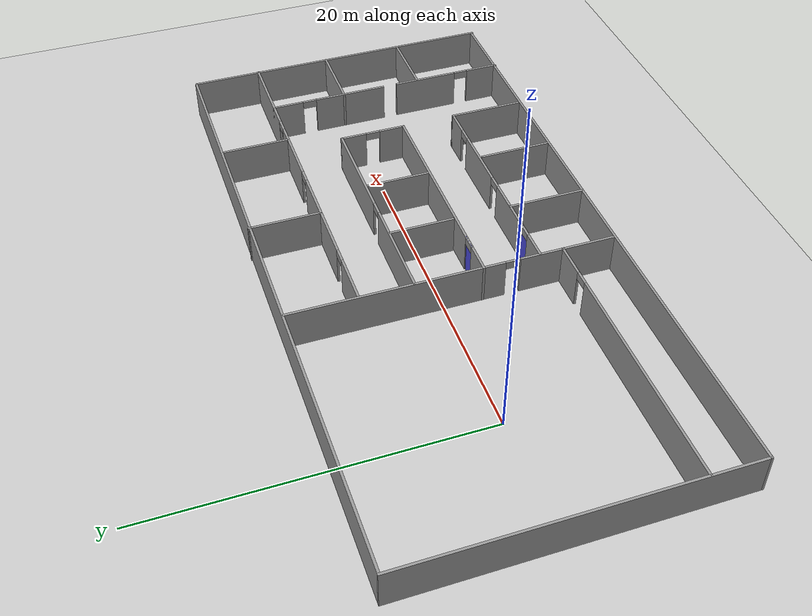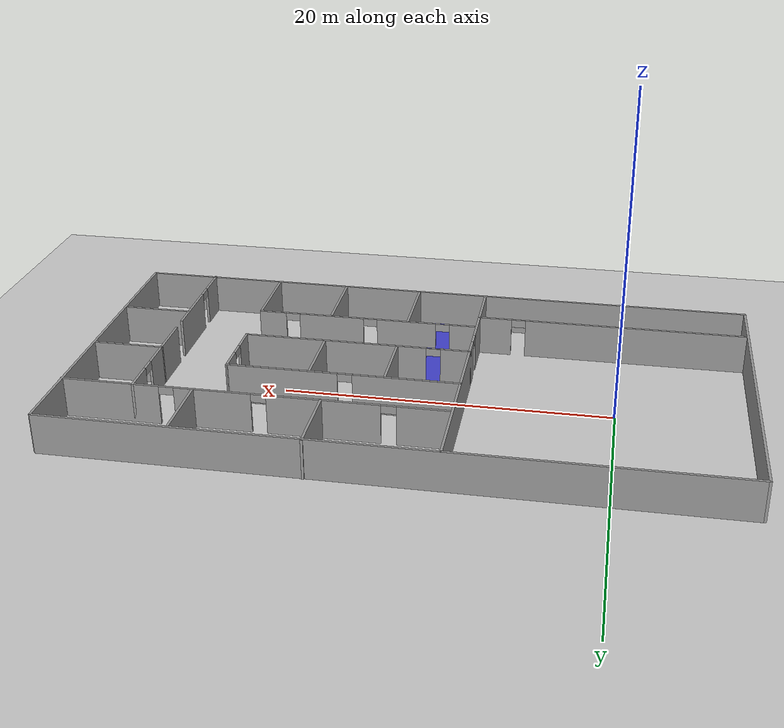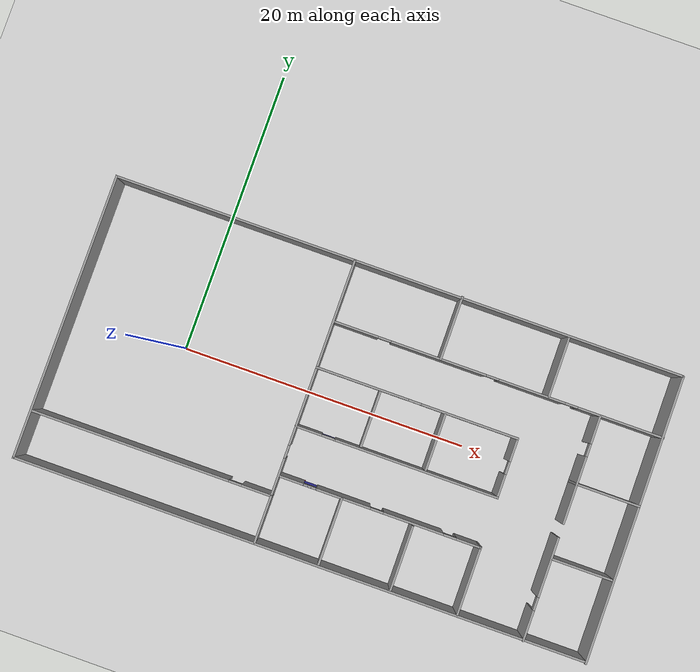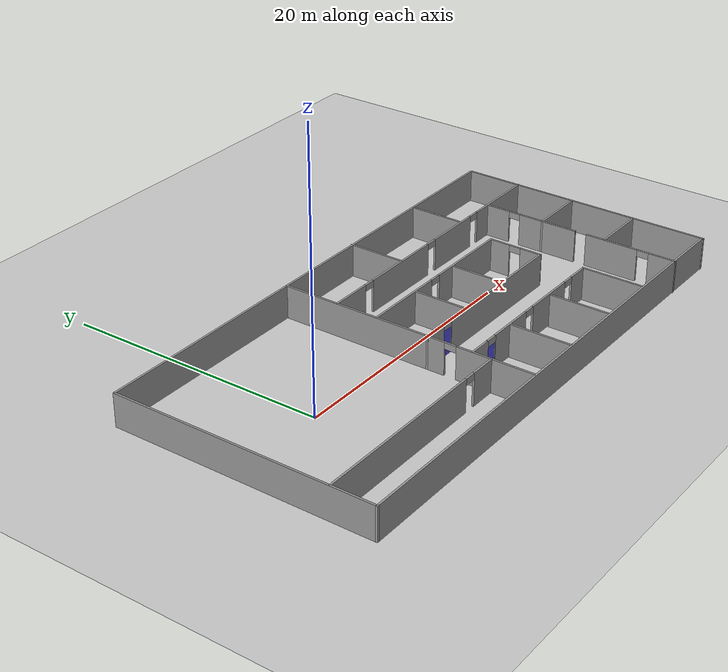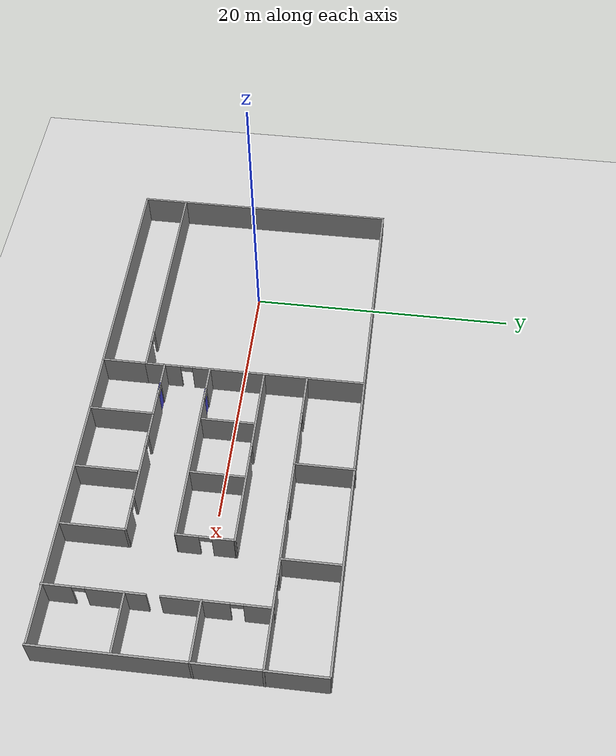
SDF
<sdf version="1.7">
 <world name="default">
  <model name="ground_plane">
   <static>1</static>
   <link name="link">
    <collision name="collision">
     <geometry><plane><normal>0 0 1</normal><size>100 100</size></plane></geometry>
     <surface><friction><ode><mu>100</mu><mu2>50</mu2></ode></friction></surface>
    </collision>
    <visual name="visual">
     <cast_shadows>0</cast_shadows>
     <geometry><plane><normal>0 0 1</normal><size>100 100</size></plane></geometry>
     <material>
      <script><uri>file://media/materials/scripts/gazebo.material</uri><name>Gazebo/Grey</name></script>
     </material>
    </visual>
   </link>
  </model>
  <model name="new_surveillance_world">
   <pose>12.0889 -0.60412 0 0 -0 0</pose>
   <link name="Wall_0">
    <collision name="Wall_0_Collision">
     <geometry><box><size>40 0.15 2.5</size></box></geometry>
     <pose>0 0 1.25 0 -0 0</pose>
    </collision>
    <visual name="Wall_0_Visual">
     <pose>0 0 1.25 0 -0 0</pose>
     <geometry><box><size>40 0.15 2.5</size></box></geometry>
     <material>
      <script><uri>file://media/materials/scripts/gazebo.material</uri><name>Gazebo/Grey</name></script>
      <ambient>1 1 1 1</ambient>
     </material>
     <meta><layer>0</layer></meta>
    </visual>
    <pose>-0.094918 -9.92648 0 0 -0 0</pose>
   </link>
   <link name="Wall_25">
    <collision name="Wall_25_Collision">
     <geometry><box><size>20 0.15 2.5</size></box></geometry>
     <pose>0 0 1.25 0 -0 0</pose>
    </collision>
    <visual name="Wall_25_Visual">
     <pose>0 0 1.25 0 -0 0</pose>
     <geometry><box><size>20 0.15 2.5</size></box></geometry>
     <material>
      <script><uri>file://media/materials/scripts/gazebo.material</uri><name>Gazebo/Grey</name></script>
      <ambient>1 1 1 1</ambient>
     </material>
     <meta><layer>0</layer></meta>
    </visual>
    <pose>19.9894 -0.065064 0 0 -0 1.5708</pose>
   </link>
   <link name="Wall_27">
    <pose>-11.5401 -6.63194 0 0 -0 0</pose>
    <visual name="Wall_27_Visual_0">
     <pose>-1.53194 0 1.25 0 -0 0</pose>
     <geometry><box><size>13.9361 0.15 2.5</size></box></geometry>
     <material>
      <script><uri>file://media/materials/scripts/gazebo.material</uri><name>Gazebo/Grey</name></script>
      <ambient>1 1 1 1</ambient>
     </material>
     <meta><layer>0</layer></meta>
    </visual>
    <collision name="Wall_27_Collision_0">
     <geometry><box><size>13.9361 0.15 2.5</size></box></geometry>
     <pose>-1.53194 0 1.25 0 -0 0</pose>
    </collision>
    <visual name="Wall_27_Visual_1">
     <pose>7.41806 0 1.25 0 -0 0</pose>
     <geometry><box><size>2.16387 0.15 2.5</size></box></geometry>
     <material>
      <script><uri>file://media/materials/scripts/gazebo.material</uri><name>Gazebo/Grey</name></script>
      <ambient>1 1 1 1</ambient>
     </material>
     <meta><layer>0</layer></meta>
    </visual>
    <collision name="Wall_27_Collision_1">
     <geometry><box><size>2.16387 0.15 2.5</size></box></geometry>
     <pose>7.41806 0 1.25 0 -0 0</pose>
    </collision>
    <visual name="Wall_27_Visual_2">
     <pose>5.88613 0 2.25 0 -0 0</pose>
     <geometry><box><size>0.9 0.15 0.5</size></box></geometry>
     <material>
      <script><uri>file://media/materials/scripts/gazebo.material</uri><name>Gazebo/Grey</name></script>
      <ambient>1 1 1 1</ambient>
     </material>
     <meta><layer>0</layer></meta>
    </visual>
    <collision name="Wall_27_Collision_2">
     <geometry><box><size>0.9 0.15 0.5</size></box></geometry>
     <pose>5.88613 0 2.25 0 -0 0</pose>
    </collision>
   </link>
   <link name="Wall_28">
    <pose>-3.1151 1.61459 0 0 -0 1.5708</pose>
    <visual name="Wall_28_Visual_0">
     <pose>-6.96456 0 1.25 0 -0 0</pose>
     <geometry><box><size>2.71394 0.15 2.5</size></box></geometry>
     <material>
      <script><uri>file://media/materials/scripts/gazebo.material</uri><name>Gazebo/Grey</name></script>
      <ambient>1 1 1 1</ambient>
     </material>
     <meta><layer>0</layer></meta>
    </visual>
    <collision name="Wall_28_Collision_0">
     <geometry><box><size>2.71394 0.15 2.5</size></box></geometry>
     <pose>-6.96456 0 1.25 0 -0 0</pose>
    </collision>
    <visual name="Wall_28_Visual_1">
     <pose>1.80697 0 1.25 0 -0 0</pose>
     <geometry><box><size>13.0291 0.15 2.5</size></box></geometry>
     <material>
      <script><uri>file://media/materials/scripts/gazebo.material</uri><name>Gazebo/Grey</name></script>
      <ambient>1 1 1 1</ambient>
     </material>
     <meta><layer>0</layer></meta>
    </visual>
    <collision name="Wall_28_Collision_1">
     <geometry><box><size>13.0291 0.15 2.5</size></box></geometry>
     <pose>1.80697 0 1.25 0 -0 0</pose>
    </collision>
    <visual name="Wall_28_Visual_2">
     <pose>-5.15759 0 2.25 0 -0 0</pose>
     <geometry><box><size>0.9 0.15 0.5</size></box></geometry>
     <material>
      <script><uri>file://media/materials/scripts/gazebo.material</uri><name>Gazebo/Grey</name></script>
      <ambient>1 1 1 1</ambient>
     </material>
     <meta><layer>0</layer></meta>
    </visual>
    <collision name="Wall_28_Collision_2">
     <geometry><box><size>0.9 0.15 0.5</size></box></geometry>
     <pose>-5.15759 0 2.25 0 -0 0</pose>
    </collision>
   </link>
   <link name="Wall_30">
    <collision name="Wall_30_Collision">
     <geometry><box><size>3.35736 0.15 2.5</size></box></geometry>
     <pose>0 0 1.25 0 -0 0</pose>
    </collision>
    <visual name="Wall_30_Visual">
     <pose>0 0 1.25 0 -0 0</pose>
     <geometry><box><size>3.35736 0.15 2.5</size></box></geometry>
     <material>
      <script><uri>file://media/materials/scripts/gazebo.material</uri><name>Gazebo/Grey</name></script>
      <ambient>1 1 1 1</ambient>
     </material>
     <meta><layer>0</layer></meta>
    </visual>
    <pose>-3.1151 -8.23541 0 0 -0 -1.5708</pose>
   </link>
   <link name="Wall_32">
    <pose>8.46992 5.62416 0 0 -0 0</pose>
    <visual name="Wall_32_Visual_0">
     <pose>-10.0174 0 1.25 0 -0 0</pose>
     <geometry><box><size>3.21511 0.15 2.5</size></box></geometry>
     <material>
      <script><uri>file://media/materials/scripts/gazebo.material</uri><name>Gazebo/Grey</name></script>
      <ambient>1 1 1 1</ambient>
     </material>
     <meta><layer>0</layer></meta>
    </visual>
    <collision name="Wall_32_Collision_0">
     <geometry><box><size>3.21511 0.15 2.5</size></box></geometry>
     <pose>-10.0174 0 1.25 0 -0 0</pose>
    </collision>
    <visual name="Wall_32_Visual_1">
     <pose>-4.16489 0 1.25 0 -0 0</pose>
     <geometry><box><size>6.69 0.15 2.5</size></box></geometry>
     <material>
      <script><uri>file://media/materials/scripts/gazebo.material</uri><name>Gazebo/Grey</name></script>
      <ambient>1 1 1 1</ambient>
     </material>
     <meta><layer>0</layer></meta>
    </visual>
    <collision name="Wall_32_Collision_1">
     <geometry><box><size>6.69 0.15 2.5</size></box></geometry>
     <pose>-4.16489 0 1.25 0 -0 0</pose>
    </collision>
    <visual name="Wall_32_Visual_2">
     <pose>2.39011 0 1.25 0 -0 0</pose>
     <geometry><box><size>4.62 0.15 2.5</size></box></geometry>
     <material>
      <script><uri>file://media/materials/scripts/gazebo.material</uri><name>Gazebo/Grey</name></script>
      <ambient>1 1 1 1</ambient>
     </material>
     <meta><layer>0</layer></meta>
    </visual>
    <collision name="Wall_32_Collision_2">
     <geometry><box><size>4.62 0.15 2.5</size></box></geometry>
     <pose>2.39011 0 1.25 0 -0 0</pose>
    </collision>
    <visual name="Wall_32_Visual_3">
     <pose>8.61256 0 1.25 0 -0 0</pose>
     <geometry><box><size>6.02489 0.15 2.5</size></box></geometry>
     <material>
      <script><uri>file://media/materials/scripts/gazebo.material</uri><name>Gazebo/Grey</name></script>
      <ambient>1 1 1 1</ambient>
     </material>
     <meta><layer>0</layer></meta>
    </visual>
    <collision name="Wall_32_Collision_3">
     <geometry><box><size>6.02489 0.15 2.5</size></box></geometry>
     <pose>8.61256 0 1.25 0 -0 0</pose>
    </collision>
    <visual name="Wall_32_Visual_4">
     <pose>-7.95989 0 2.25 0 -0 0</pose>
     <geometry><box><size>0.9 0.15 0.5</size></box></geometry>
     <material>
      <script><uri>file://media/materials/scripts/gazebo.material</uri><name>Gazebo/Grey</name></script>
      <ambient>1 1 1 1</ambient>
     </material>
     <meta><layer>0</layer></meta>
    </visual>
    <collision name="Wall_32_Collision_4">
     <geometry><box><size>0.9 0.15 0.5</size></box></geometry>
     <pose>-7.95989 0 2.25 0 -0 0</pose>
    </collision>
    <visual name="Wall_32_Visual_5">
     <pose>-0.369888 0 2.25 0 -0 0</pose>
     <geometry><box><size>0.9 0.15 0.5</size></box></geometry>
     <material>
      <script><uri>file://media/materials/scripts/gazebo.material</uri><name>Gazebo/Grey</name></script>
      <ambient>1 1 1 1</ambient>
     </material>
     <meta><layer>0</layer></meta>
    </visual>
    <collision name="Wall_32_Collision_5">
     <geometry><box><size>0.9 0.15 0.5</size></box></geometry>
     <pose>-0.369888 0 2.25 0 -0 0</pose>
    </collision>
    <visual name="Wall_32_Visual_6">
     <pose>5.15011 0 2.25 0 -0 0</pose>
     <geometry><box><size>0.9 0.15 0.5</size></box></geometry>
     <material>
      <script><uri>file://media/materials/scripts/gazebo.material</uri><name>Gazebo/Grey</name></script>
      <ambient>1 1 1 1</ambient>
     </material>
     <meta><layer>0</layer></meta>
    </visual>
    <collision name="Wall_32_Collision_6">
     <geometry><box><size>0.9 0.15 0.5</size></box></geometry>
     <pose>5.15011 0 2.25 0 -0 0</pose>
    </collision>
   </link>
   <link name="Wall_34">
    <pose>15.646 -2.17584 0 0 -0 -1.5708</pose>
    <visual name="Wall_34_Visual_0">
     <pose>-6.85992 0 1.25 0 -0 0</pose>
     <geometry><box><size>2.03016 0.15 2.5</size></box></geometry>
     <material>
      <script><uri>file://media/materials/scripts/gazebo.material</uri><name>Gazebo/Grey</name></script>
      <ambient>1 1 1 1</ambient>
     </material>
     <meta><layer>0</layer></meta>
    </visual>
    <collision name="Wall_34_Collision_0">
     <geometry><box><size>2.03016 0.15 2.5</size></box></geometry>
     <pose>-6.85992 0 1.25 0 -0 0</pose>
    </collision>
    <visual name="Wall_34_Visual_1">
     <pose>-2.58884 0 1.25 0 -0 0</pose>
     <geometry><box><size>4.712 0.15 2.5</size></box></geometry>
     <material>
      <script><uri>file://media/materials/scripts/gazebo.material</uri><name>Gazebo/Grey</name></script>
      <ambient>1 1 1 1</ambient>
     </material>
     <meta><layer>0</layer></meta>
    </visual>
    <collision name="Wall_34_Collision_1">
     <geometry><box><size>4.712 0.15 2.5</size></box></geometry>
     <pose>-2.58884 0 1.25 0 -0 0</pose>
    </collision>
    <visual name="Wall_34_Visual_2">
     <pose>2.74716 0 1.25 0 -0 0</pose>
     <geometry><box><size>4.16 0.15 2.5</size></box></geometry>
     <material>
      <script><uri>file://media/materials/scripts/gazebo.material</uri><name>Gazebo/Grey</name></script>
      <ambient>1 1 1 1</ambient>
     </material>
     <meta><layer>0</layer></meta>
    </visual>
    <collision name="Wall_34_Collision_2">
     <geometry><box><size>4.16 0.15 2.5</size></box></geometry>
     <pose>2.74716 0 1.25 0 -0 0</pose>
    </collision>
    <visual name="Wall_34_Visual_3">
     <pose>6.80108 0 1.25 0 -0 0</pose>
     <geometry><box><size>2.14784 0.15 2.5</size></box></geometry>
     <material>
      <script><uri>file://media/materials/scripts/gazebo.material</uri><name>Gazebo/Grey</name></script>
      <ambient>1 1 1 1</ambient>
     </material>
     <meta><layer>0</layer></meta>
    </visual>
    <collision name="Wall_34_Collision_3">
     <geometry><box><size>2.14784 0.15 2.5</size></box></geometry>
     <pose>6.80108 0 1.25 0 -0 0</pose>
    </collision>
    <visual name="Wall_34_Visual_4">
     <pose>-5.39484 0 2.25 0 -0 0</pose>
     <geometry><box><size>0.9 0.15 0.5</size></box></geometry>
     <material>
      <script><uri>file://media/materials/scripts/gazebo.material</uri><name>Gazebo/Grey</name></script>
      <ambient>1 1 1 1</ambient>
     </material>
     <meta><layer>0</layer></meta>
    </visual>
    <collision name="Wall_34_Collision_4">
     <geometry><box><size>0.9 0.15 0.5</size></box></geometry>
     <pose>-5.39484 0 2.25 0 -0 0</pose>
    </collision>
    <visual name="Wall_34_Visual_5">
     <pose>-0.23284 0 2.25 0 -0 0</pose>
     <geometry><box><size>0 0.15 0.5</size></box></geometry>
     <material>
      <script><uri>file://media/materials/scripts/gazebo.material</uri><name>Gazebo/Grey</name></script>
      <ambient>1 1 1 1</ambient>
     </material>
     <meta><layer>0</layer></meta>
    </visual>
    <collision name="Wall_34_Collision_5">
     <geometry><box><size>0 0.15 0.5</size></box></geometry>
     <pose>-0.23284 0 2.25 0 -0 0</pose>
    </collision>
    <visual name="Wall_34_Visual_6">
     <pose>5.27716 0 2.25 0 -0 0</pose>
     <geometry><box><size>0.9 0.15 0.5</size></box></geometry>
     <material>
      <script><uri>file://media/materials/scripts/gazebo.material</uri><name>Gazebo/Grey</name></script>
      <ambient>1 1 1 1</ambient>
     </material>
     <meta><layer>0</layer></meta>
    </visual>
    <collision name="Wall_34_Collision_6">
     <geometry><box><size>0.9 0.15 0.5</size></box></geometry>
     <pose>5.27716 0 2.25 0 -0 0</pose>
    </collision>
   </link>
   <link name="Wall_36">
    <pose>3.93738 2.36994 0 0 -0 0</pose>
    <visual name="Wall_36_Visual_0">
     <pose>-3.86818 0 1.25 0 -0 0</pose>
     <geometry><box><size>6.51365 0.15 2.5</size></box></geometry>
     <material>
      <script><uri>file://media/materials/scripts/gazebo.material</uri><name>Gazebo/Grey</name></script>
      <ambient>1 1 1 1</ambient>
     </material>
     <meta><layer>0</layer></meta>
    </visual>
    <collision name="Wall_36_Collision_0">
     <geometry><box><size>6.51365 0.15 2.5</size></box></geometry>
     <pose>-3.86818 0 1.25 0 -0 0</pose>
    </collision>
    <visual name="Wall_36_Visual_1">
     <pose>3.70682 0 1.25 0 -0 0</pose>
     <geometry><box><size>6.83635 0.15 2.5</size></box></geometry>
     <material>
      <script><uri>file://media/materials/scripts/gazebo.material</uri><name>Gazebo/Grey</name></script>
      <ambient>1 1 1 1</ambient>
     </material>
     <meta><layer>0</layer></meta>
    </visual>
    <collision name="Wall_36_Collision_1">
     <geometry><box><size>6.83635 0.15 2.5</size></box></geometry>
     <pose>3.70682 0 1.25 0 -0 0</pose>
    </collision>
    <visual name="Wall_36_Visual_2">
     <pose>-0.161353 0 2.25 0 -0 0</pose>
     <geometry><box><size>0.9 0.15 0.5</size></box></geometry>
     <material>
      <script><uri>file://media/materials/scripts/gazebo.material</uri><name>Gazebo/Grey</name></script>
      <ambient>1 1 1 1</ambient>
     </material>
     <meta><layer>0</layer></meta>
    </visual>
    <collision name="Wall_36_Collision_2">
     <geometry><box><size>0.9 0.15 0.5</size></box></geometry>
     <pose>-0.161353 0 2.25 0 -0 0</pose>
    </collision>
   </link>
   <link name="Wall_38">
    <pose>3.93032 -1.7507 0 0 -0 3.14159</pose>
    <visual name="Wall_38_Visual_0">
     <pose>-1.38735 0 1.25 0 -0 0</pose>
     <geometry><box><size>11.4753 0.15 2.5</size></box></geometry>
     <material>
      <script><uri>file://media/materials/scripts/gazebo.material</uri><name>Gazebo/Grey</name></script>
      <ambient>1 1 1 1</ambient>
     </material>
     <meta><layer>0</layer></meta>
    </visual>
    <collision name="Wall_38_Collision_0">
     <geometry><box><size>11.4753 0.15 2.5</size></box></geometry>
     <pose>-1.38735 0 1.25 0 -0 0</pose>
    </collision>
    <visual name="Wall_38_Visual_1">
     <pose>6.18765 0 1.25 0 -0 0</pose>
     <geometry><box><size>1.87471 0.15 2.5</size></box></geometry>
     <material>
      <script><uri>file://media/materials/scripts/gazebo.material</uri><name>Gazebo/Grey</name></script>
      <ambient>1 1 1 1</ambient>
     </material>
     <meta><layer>0</layer></meta>
    </visual>
    <collision name="Wall_38_Collision_1">
     <geometry><box><size>1.87471 0.15 2.5</size></box></geometry>
     <pose>6.18765 0 1.25 0 -0 0</pose>
    </collision>
    <visual name="Wall_38_Visual_2">
     <pose>4.80029 0 2.25 0 -0 0</pose>
     <geometry><box><size>0.9 0.15 0.5</size></box></geometry>
     <material>
      <script><uri>file://media/materials/scripts/gazebo.material</uri><name>Gazebo/Grey</name></script>
      <ambient>1 1 1 1</ambient>
     </material>
     <meta><layer>0</layer></meta>
    </visual>
    <collision name="Wall_38_Collision_2">
     <geometry><box><size>0.9 0.15 0.5</size></box></geometry>
     <pose>4.80029 0 2.25 0 -0 0</pose>
    </collision>
   </link>
   <link name="Wall_4">
    <collision name="Wall_4_Collision">
     <geometry><box><size>40 0.15 2.5</size></box></geometry>
     <pose>0 0 1.25 0 -0 0</pose>
    </collision>
    <visual name="Wall_4_Visual">
     <pose>0 0 1.25 0 -0 0</pose>
     <geometry><box><size>40 0.15 2.5</size></box></geometry>
     <material>
      <script><uri>file://media/materials/scripts/gazebo.material</uri><name>Gazebo/Grey</name></script>
      <ambient>1 1 1 1</ambient>
     </material>
     <meta><layer>0</layer></meta>
    </visual>
    <pose>-0.005001 9.92216 0 0 -0 3.14159</pose>
   </link>
   <link name="Wall_41">
    <pose>3.96992 -5.21171 0 0 -0 0</pose>
    <visual name="Wall_41_Visual_0">
     <pose>-6.23044 0 1.25 0 -0 0</pose>
     <geometry><box><size>1.78911 0.15 2.5</size></box></geometry>
     <material>
      <script><uri>file://media/materials/scripts/gazebo.material</uri><name>Gazebo/Grey</name></script>
      <ambient>1 1 1 1</ambient>
     </material>
     <meta><layer>0</layer></meta>
    </visual>
    <collision name="Wall_41_Collision_0">
     <geometry><box><size>1.78911 0.15 2.5</size></box></geometry>
     <pose>-6.23044 0 1.25 0 -0 0</pose>
    </collision>
    <visual name="Wall_41_Visual_1">
     <pose>-2.53989 0 1.25 0 -0 0</pose>
     <geometry><box><size>3.792 0.15 2.5</size></box></geometry>
     <material>
      <script><uri>file://media/materials/scripts/gazebo.material</uri><name>Gazebo/Grey</name></script>
      <ambient>1 1 1 1</ambient>
     </material>
     <meta><layer>0</layer></meta>
    </visual>
    <collision name="Wall_41_Collision_1">
     <geometry><box><size>3.792 0.15 2.5</size></box></geometry>
     <pose>-2.53989 0 1.25 0 -0 0</pose>
    </collision>
    <visual name="Wall_41_Visual_2">
     <pose>2.35911 0 1.25 0 -0 0</pose>
     <geometry><box><size>4.206 0.15 2.5</size></box></geometry>
     <material>
      <script><uri>file://media/materials/scripts/gazebo.material</uri><name>Gazebo/Grey</name></script>
      <ambient>1 1 1 1</ambient>
     </material>
     <meta><layer>0</layer></meta>
    </visual>
    <collision name="Wall_41_Collision_2">
     <geometry><box><size>4.206 0.15 2.5</size></box></geometry>
     <pose>2.35911 0 1.25 0 -0 0</pose>
    </collision>
    <visual name="Wall_41_Visual_3">
     <pose>6.24356 0 1.25 0 -0 0</pose>
     <geometry><box><size>1.76289 0.15 2.5</size></box></geometry>
     <material>
      <script><uri>file://media/materials/scripts/gazebo.material</uri><name>Gazebo/Grey</name></script>
      <ambient>1 1 1 1</ambient>
     </material>
     <meta><layer>0</layer></meta>
    </visual>
    <collision name="Wall_41_Collision_3">
     <geometry><box><size>1.76289 0.15 2.5</size></box></geometry>
     <pose>6.24356 0 1.25 0 -0 0</pose>
    </collision>
    <visual name="Wall_41_Visual_4">
     <pose>-4.88589 0 2.25 0 -0 0</pose>
     <geometry><box><size>0.9 0.15 0.5</size></box></geometry>
     <material>
      <script><uri>file://media/materials/scripts/gazebo.material</uri><name>Gazebo/Grey</name></script>
      <ambient>1 1 1 1</ambient>
     </material>
     <meta><layer>0</layer></meta>
    </visual>
    <collision name="Wall_41_Collision_4">
     <geometry><box><size>0.9 0.15 0.5</size></box></geometry>
     <pose>-4.88589 0 2.25 0 -0 0</pose>
    </collision>
    <visual name="Wall_41_Visual_5">
     <pose>-0.193888 0 2.25 0 -0 0</pose>
     <geometry><box><size>0.9 0.15 0.5</size></box></geometry>
     <material>
      <script><uri>file://media/materials/scripts/gazebo.material</uri><name>Gazebo/Grey</name></script>
      <ambient>1 1 1 1</ambient>
     </material>
     <meta><layer>0</layer></meta>
    </visual>
    <collision name="Wall_41_Collision_5">
     <geometry><box><size>0.9 0.15 0.5</size></box></geometry>
     <pose>-0.193888 0 2.25 0 -0 0</pose>
    </collision>
    <visual name="Wall_41_Visual_6">
     <pose>4.91211 0 2.25 0 -0 0</pose>
     <geometry><box><size>0.9 0.15 0.5</size></box></geometry>
     <material>
      <script><uri>file://media/materials/scripts/gazebo.material</uri><name>Gazebo/Grey</name></script>
      <ambient>1 1 1 1</ambient>
     </material>
     <meta><layer>0</layer></meta>
    </visual>
    <collision name="Wall_41_Collision_6">
     <geometry><box><size>0.9 0.15 0.5</size></box></geometry>
     <pose>4.91211 0 2.25 0 -0 0</pose>
    </collision>
   </link>
   <link name="Wall_42">
    <collision name="Wall_42_Collision">
     <geometry><box><size>4.75 0.15 2.5</size></box></geometry>
     <pose>0 0 1.25 0 -0 0</pose>
    </collision>
    <visual name="Wall_42_Visual">
     <pose>0 0 1.25 0 -0 0</pose>
     <geometry><box><size>4.75 0.15 2.5</size></box></geometry>
     <material>
      <script><uri>file://media/materials/scripts/gazebo.material</uri><name>Gazebo/Grey</name></script>
      <ambient>1 1 1 1</ambient>
     </material>
     <meta><layer>0</layer></meta>
    </visual>
    <pose>11.0199 -7.51171 0 0 -0 -1.5708</pose>
   </link>
   <link name="Wall_44">
    <collision name="Wall_44_Collision">
     <geometry><box><size>4.5 0.15 2.5</size></box></geometry>
     <pose>0 0 1.25 0 -0 0</pose>
    </collision>
    <visual name="Wall_44_Visual">
     <pose>0 0 1.25 0 -0 0</pose>
     <geometry><box><size>4.5 0.15 2.5</size></box></geometry>
     <material>
      <script><uri>file://media/materials/scripts/gazebo.material</uri><name>Gazebo/Grey</name></script>
      <ambient>1 1 1 1</ambient>
     </material>
     <meta><layer>0</layer></meta>
    </visual>
    <pose>4.4419 7.81506 0 0 -0 -1.5708</pose>
   </link>
   <link name="Wall_46">
    <collision name="Wall_46_Collision">
     <geometry><box><size>4.25 0.15 2.5</size></box></geometry>
     <pose>0 0 1.25 0 -0 0</pose>
    </collision>
    <visual name="Wall_46_Visual">
     <pose>0 0 1.25 0 -0 0</pose>
     <geometry><box><size>4.25 0.15 2.5</size></box></geometry>
     <material>
      <script><uri>file://media/materials/scripts/gazebo.material</uri><name>Gazebo/Grey</name></script>
      <ambient>1 1 1 1</ambient>
     </material>
     <meta><layer>0</layer></meta>
    </visual>
    <pose>12.0165 7.74267 0 0 -0 -1.5708</pose>
   </link>
   <link name="Wall_48">
    <pose>10.9839 0.309616 0 0 -0 -1.57251</pose>
    <visual name="Wall_48_Visual_0">
     <pose>-1.29852 0 1.25 0 -0 0</pose>
     <geometry><box><size>1.6736 0.15 2.5</size></box></geometry>
     <material>
      <script><uri>file://media/materials/scripts/gazebo.material</uri><name>Gazebo/Grey</name></script>
      <ambient>1 1 1 1</ambient>
     </material>
     <meta><layer>0</layer></meta>
    </visual>
    <collision name="Wall_48_Collision_0">
     <geometry><box><size>1.6736 0.15 2.5</size></box></geometry>
     <pose>-1.29852 0 1.25 0 -0 0</pose>
    </collision>
    <visual name="Wall_48_Visual_1">
     <pose>1.2868 0 1.25 0 -0 0</pose>
     <geometry><box><size>1.69704 0.15 2.5</size></box></geometry>
     <material>
      <script><uri>file://media/materials/scripts/gazebo.material</uri><name>Gazebo/Grey</name></script>
      <ambient>1 1 1 1</ambient>
     </material>
     <meta><layer>0</layer></meta>
    </visual>
    <collision name="Wall_48_Collision_1">
     <geometry><box><size>1.69704 0.15 2.5</size></box></geometry>
     <pose>1.2868 0 1.25 0 -0 0</pose>
    </collision>
    <visual name="Wall_48_Visual_2">
     <pose>-0.011721 0 2.25 0 -0 0</pose>
     <geometry><box><size>0.9 0.15 0.5</size></box></geometry>
     <material>
      <script><uri>file://media/materials/scripts/gazebo.material</uri><name>Gazebo/Grey</name></script>
      <ambient>1 1 1 1</ambient>
     </material>
     <meta><layer>0</layer></meta>
    </visual>
    <collision name="Wall_48_Collision_2">
     <geometry><box><size>0.9 0.15 0.5</size></box></geometry>
     <pose>-0.011721 0 2.25 0 -0 0</pose>
    </collision>
   </link>
   <link name="Wall_50">
    <collision name="Wall_50_Collision">
     <geometry><box><size>4.5 0.15 2.5</size></box></geometry>
     <pose>0 0 1.25 0 -0 0</pose>
    </collision>
    <visual name="Wall_50_Visual">
     <pose>0 0 1.25 0 -0 0</pose>
     <geometry><box><size>4.5 0.15 2.5</size></box></geometry>
     <material>
      <script><uri>file://media/materials/scripts/gazebo.material</uri><name>Gazebo/Grey</name></script>
      <ambient>1 1 1 1</ambient>
     </material>
     <meta><layer>0</layer></meta>
    </visual>
    <pose>17.8178 0.843208 0 0 -0 0</pose>
   </link>
   <link name="Wall_54">
    <collision name="Wall_54_Collision">
     <geometry><box><size>4.25 0.15 2.5</size></box></geometry>
     <pose>0 0 1.25 0 -0 0</pose>
    </collision>
    <visual name="Wall_54_Visual">
     <pose>0 0 1.25 0 -0 0</pose>
     <geometry><box><size>4.25 0.15 2.5</size></box></geometry>
     <material>
      <script><uri>file://media/materials/scripts/gazebo.material</uri><name>Gazebo/Grey</name></script>
      <ambient>1 1 1 1</ambient>
     </material>
     <meta><layer>0</layer></meta>
    </visual>
    <pose>17.786 -4.325 0 0 -0 0</pose>
   </link>
   <link name="Wall_56">
    <collision name="Wall_56_Collision">
     <geometry><box><size>4.75 0.15 2.5</size></box></geometry>
     <pose>0 0 1.25 0 -0 0</pose>
    </collision>
    <visual name="Wall_56_Visual">
     <pose>0 0 1.25 0 -0 0</pose>
     <geometry><box><size>4.75 0.15 2.5</size></box></geometry>
     <material>
      <script><uri>file://media/materials/scripts/gazebo.material</uri><name>Gazebo/Grey</name></script>
      <ambient>1 1 1 1</ambient>
     </material>
     <meta><layer>0</layer></meta>
    </visual>
    <pose>1.33803 -7.545 0 0 -0 -1.5708</pose>
   </link>
   <link name="Wall_58">
    <collision name="Wall_58_Collision">
     <geometry><box><size>4.5 0.15 2.5</size></box></geometry>
     <pose>0 0 1.25 0 -0 0</pose>
    </collision>
    <visual name="Wall_58_Visual">
     <pose>0 0 1.25 0 -0 0</pose>
     <geometry><box><size>4.5 0.15 2.5</size></box></geometry>
     <material>
      <script><uri>file://media/materials/scripts/gazebo.material</uri><name>Gazebo/Grey</name></script>
      <ambient>1 1 1 1</ambient>
     </material>
     <meta><layer>0</layer></meta>
    </visual>
    <pose>6.35203 -7.604 0 0 -0 -1.5708</pose>
   </link>
   <link name="Wall_6">
    <collision name="Wall_6_Collision">
     <geometry><box><size>20 0.15 2.5</size></box></geometry>
     <pose>0 0 1.25 0 -0 0</pose>
    </collision>
    <visual name="Wall_6_Visual">
     <pose>0 0 1.25 0 -0 0</pose>
     <geometry><box><size>20 0.15 2.5</size></box></geometry>
     <material>
      <script><uri>file://media/materials/scripts/gazebo.material</uri><name>Gazebo/Grey</name></script>
      <ambient>1 1 1 1</ambient>
     </material>
     <meta><layer>0</layer></meta>
    </visual>
    <pose>-20.0199 -0.001483 0 0 -0 1.5708</pose>
   </link>
   <link name="Wall_60">
    <collision name="Wall_60_Collision">
     <geometry><box><size>4 0.15 2.5</size></box></geometry>
     <pose>0 0 1.25 0 -0 0</pose>
    </collision>
    <visual name="Wall_60_Visual">
     <pose>0 0 1.25 0 -0 0</pose>
     <geometry><box><size>4 0.15 2.5</size></box></geometry>
     <material>
      <script><uri>file://media/materials/scripts/gazebo.material</uri><name>Gazebo/Grey</name></script>
      <ambient>1 1 1 1</ambient>
     </material>
     <meta><layer>0</layer></meta>
    </visual>
    <pose>1.38403 0.359998 0 0 -0 1.5708</pose>
   </link>
   <link name="Wall_62">
    <collision name="Wall_62_Collision">
     <geometry><box><size>4 0.15 2.5</size></box></geometry>
     <pose>0 0 1.25 0 -0 0</pose>
    </collision>
    <visual name="Wall_62_Visual">
     <pose>0 0 1.25 0 -0 0</pose>
     <geometry><box><size>4 0.15 2.5</size></box></geometry>
     <material>
      <script><uri>file://media/materials/scripts/gazebo.material</uri><name>Gazebo/Grey</name></script>
      <ambient>1 1 1 1</ambient>
     </material>
     <meta><layer>0</layer></meta>
    </visual>
    <pose>5.93803 0.327998 0 0 -0 -1.5708</pose>
   </link>
   <static>1</static>
  </model>
  <model name="door_3">
   <link name="door_frame">
    <pose>0.25 0 1.25 0 -0 0</pose>
    <kinematic>1</kinematic>
    <inertial>
     <inertia><ixx>1</ixx><ixy>0</ixy><ixz>0</ixz><iyy>1</iyy><iyz>0</iyz><izz>1</izz></inertia>
     <mass>1</mass>
    </inertial>
    <visual name="frame_visual">
     <geometry><box><size>0.1 0.1 2.5</size></box></geometry>
     <material>
      <ambient>0.7 0.7 0.7 1</ambient>
      <diffuse>0.8 0.8 0.8 1</diffuse>
      <shader type="pixel"><normal_map>__default__</normal_map></shader>
      <script><name>ModelPreview_1::door_frame::frame_visual_MATERIAL_</name><uri>__default__</uri></script>
      <specular>0 0 0 1</specular>
      <emissive>0 0 0 1</emissive>
     </material>
    </visual>
    <collision name="frame_collision">
     <geometry><box><size>0.1 0.1 2.5</size></box></geometry>
     <surface>
      <friction>
       <ode><mu>1</mu><mu2>1</mu2><fdir1>0 0 0</fdir1><slip1>0</slip1><slip2>0</slip2></ode>
       <torsional>
        <coefficient>1</coefficient>
        <patch_radius>0</patch_radius>
        <surface_radius>0</surface_radius>
        <use_patch_radius>1</use_patch_radius>
        <ode><slip>0</slip></ode>
       </torsional>
      </friction>
      <bounce><restitution_coefficient>0</restitution_coefficient><threshold>1e+06</threshold></bounce>
      <contact>
       <collide_without_contact>0</collide_without_contact>
       <collide_without_contact_bitmask>1</collide_without_contact_bitmask>
       <collide_bitmask>1</collide_bitmask>
       <ode>
        <soft_cfm>0</soft_cfm>
        <soft_erp>0.2</soft_erp>
        <kp>1e+13</kp>
        <kd>1</kd>
        <max_vel>0.01</max_vel>
        <min_depth>0</min_depth>
       </ode>
       <bullet>
        <split_impulse>1</split_impulse>
        <split_impulse_penetration_threshold>-0.01</split_impulse_penetration_threshold>
        <soft_cfm>0</soft_cfm>
        <soft_erp>0.2</soft_erp>
        <kp>1e+13</kp>
        <kd>1</kd>
       </bullet>
      </contact>
     </surface>
    </collision>
   </link>
   <link name="door">
    <kinematic>1</kinematic>
    <pose>-0.261545 0 1.25 0 -0 0</pose>
    <inertial>
     <inertia>
      <ixx>0.75177</ixx>
      <ixy>0</ixy>
      <ixz>0</ixz>
      <iyy>0.814042</iyy>
      <iyz>0</iyz>
      <izz>0.062873</izz>
     </inertia>
     <mass>1.44282</mass>
    </inertial>
    <visual name="door_visual">
     <geometry><box><size>1 0.05 2.5</size></box></geometry>
     <material>
      <ambient>0.2 0.2 0.8 1</ambient>
      <diffuse>0.3 0.3 0.9 1</diffuse>
      <shader type="pixel"><normal_map>__default__</normal_map></shader>
      <script><name>ModelPreview_1::door::door_visual_MATERIAL_</name><uri>__default__</uri></script>
      <specular>0 0 0 1</specular>
      <emissive>0 0 0 1</emissive>
     </material>
    </visual>
    <collision name="door_collision">
     <geometry><box><size>1 0.05 2.5</size></box></geometry>
     <surface>
      <friction>
       <ode><mu>1</mu><mu2>1</mu2><fdir1>0 0 0</fdir1><slip1>0</slip1><slip2>0</slip2></ode>
       <torsional>
        <coefficient>1</coefficient>
        <patch_radius>0</patch_radius>
        <surface_radius>0</surface_radius>
        <use_patch_radius>1</use_patch_radius>
        <ode><slip>0</slip></ode>
       </torsional>
      </friction>
      <bounce><restitution_coefficient>0</restitution_coefficient><threshold>1e+06</threshold></bounce>
      <contact>
       <collide_without_contact>0</collide_without_contact>
       <collide_without_contact_bitmask>1</collide_without_contact_bitmask>
       <collide_bitmask>1</collide_bitmask>
       <ode>
        <soft_cfm>0</soft_cfm>
        <soft_erp>0.2</soft_erp>
        <kp>1e+13</kp>
        <kd>1</kd>
        <max_vel>0.01</max_vel>
        <min_depth>0</min_depth>
       </ode>
       <bullet>
        <split_impulse>1</split_impulse>
        <split_impulse_penetration_threshold>-0.01</split_impulse_penetration_threshold>
        <soft_cfm>0</soft_cfm>
        <soft_erp>0.2</soft_erp>
        <kp>1e+13</kp>
        <kd>1</kd>
       </bullet>
      </contact>
     </surface>
    </collision>
   </link>
   <joint name="door_joint" type="prismatic">
    <parent>door_frame</parent>
    <child>door</child>
    <axis>
     <xyz>1 0 0</xyz>
     <limit><lower>0</lower><upper>2</upper><effort>-1</effort><velocity>-1</velocity></limit>
     <dynamics>
      <spring_reference>0</spring_reference>
      <spring_stiffness>0</spring_stiffness>
      <damping>0</damping>
      <friction>0</friction>
     </dynamics>
    </axis>
    <physics>
     <ode><limit><cfm>0</cfm><erp>0.2</erp></limit><suspension><cfm>0</cfm><erp>0.2</erp></suspension></ode>
    </physics>
   </joint>
   <static>0</static>
   <plugin name="door_control_plugin" filename="libdoor_control_plugin.so">
    <door_joint>door_joint</door_joint>
    <speed>1.0</speed>
    <open_target>1.0</open_target>
    <close_target>0.0</close_target>
   </plugin>
   <pose>11.3937 -5.81972 0 0 -0 0</pose>
  </model>
  <model name="door_4">
   <link name="door_frame">
    <pose>0.25 0 1.25 0 -0 0</pose>
    <kinematic>1</kinematic>
    <inertial>
     <inertia><ixx>1</ixx><ixy>0</ixy><ixz>0</ixz><iyy>1</iyy><iyz>0</iyz><izz>1</izz></inertia>
     <mass>1</mass>
    </inertial>
    <visual name="frame_visual">
     <geometry><box><size>0.1 0.1 2.5</size></box></geometry>
     <material>
      <ambient>0.7 0.7 0.7 1</ambient>
      <diffuse>0.8 0.8 0.8 1</diffuse>
      <shader type="pixel"><normal_map>__default__</normal_map></shader>
      <script><name>ModelPreview_1::door_frame::frame_visual_MATERIAL_</name><uri>__default__</uri></script>
      <specular>0 0 0 1</specular>
      <emissive>0 0 0 1</emissive>
     </material>
    </visual>
    <collision name="frame_collision">
     <geometry><box><size>0.1 0.1 2.5</size></box></geometry>
     <surface>
      <friction>
       <ode><mu>1</mu><mu2>1</mu2><fdir1>0 0 0</fdir1><slip1>0</slip1><slip2>0</slip2></ode>
       <torsional>
        <coefficient>1</coefficient>
        <patch_radius>0</patch_radius>
        <surface_radius>0</surface_radius>
        <use_patch_radius>1</use_patch_radius>
        <ode><slip>0</slip></ode>
       </torsional>
      </friction>
      <bounce><restitution_coefficient>0</restitution_coefficient><threshold>1e+06</threshold></bounce>
      <contact>
       <collide_without_contact>0</collide_without_contact>
       <collide_without_contact_bitmask>1</collide_without_contact_bitmask>
       <collide_bitmask>1</collide_bitmask>
       <ode>
        <soft_cfm>0</soft_cfm>
        <soft_erp>0.2</soft_erp>
        <kp>1e+13</kp>
        <kd>1</kd>
        <max_vel>0.01</max_vel>
        <min_depth>0</min_depth>
       </ode>
       <bullet>
        <split_impulse>1</split_impulse>
        <split_impulse_penetration_threshold>-0.01</split_impulse_penetration_threshold>
        <soft_cfm>0</soft_cfm>
        <soft_erp>0.2</soft_erp>
        <kp>1e+13</kp>
        <kd>1</kd>
       </bullet>
      </contact>
     </surface>
    </collision>
   </link>
   <link name="door">
    <kinematic>1</kinematic>
    <pose>-0.195697 0 1.25 0 -0 0</pose>
    <inertial>
     <inertia>
      <ixx>0.971443</ixx>
      <ixy>0</ixy>
      <ixz>0</ixz>
      <iyy>1.10607</iyy>
      <iyz>0</iyz>
      <izz>0.135403</izz>
     </inertia>
     <mass>1.86443</mass>
    </inertial>
    <visual name="door_visual">
     <geometry><box><size>1 0.05 2.5</size></box></geometry>
     <material>
      <ambient>0.2 0.2 0.8 1</ambient>
      <diffuse>0.3 0.3 0.9 1</diffuse>
      <shader type="pixel"><normal_map>__default__</normal_map></shader>
      <script><name>ModelPreview_1::door::door_visual_MATERIAL_</name><uri>__default__</uri></script>
      <specular>0 0 0 1</specular>
      <emissive>0 0 0 1</emissive>
     </material>
    </visual>
    <collision name="door_collision">
     <geometry><box><size>1 0.05 2.5</size></box></geometry>
     <surface>
      <friction>
       <ode><mu>1</mu><mu2>1</mu2><fdir1>0 0 0</fdir1><slip1>0</slip1><slip2>0</slip2></ode>
       <torsional>
        <coefficient>1</coefficient>
        <patch_radius>0</patch_radius>
        <surface_radius>0</surface_radius>
        <use_patch_radius>1</use_patch_radius>
        <ode><slip>0</slip></ode>
       </torsional>
      </friction>
      <bounce><restitution_coefficient>0</restitution_coefficient><threshold>1e+06</threshold></bounce>
      <contact>
       <collide_without_contact>0</collide_without_contact>
       <collide_without_contact_bitmask>1</collide_without_contact_bitmask>
       <collide_bitmask>1</collide_bitmask>
       <ode>
        <soft_cfm>0</soft_cfm>
        <soft_erp>0.2</soft_erp>
        <kp>1e+13</kp>
        <kd>1</kd>
        <max_vel>0.01</max_vel>
        <min_depth>0</min_depth>
       </ode>
       <bullet>
        <split_impulse>1</split_impulse>
        <split_impulse_penetration_threshold>-0.01</split_impulse_penetration_threshold>
        <soft_cfm>0</soft_cfm>
        <soft_erp>0.2</soft_erp>
        <kp>1e+13</kp>
        <kd>1</kd>
       </bullet>
      </contact>
     </surface>
    </collision>
   </link>
   <joint name="door_joint" type="prismatic">
    <parent>door_frame</parent>
    <child>door</child>
    <axis>
     <xyz>1 0 0</xyz>
     <limit><lower>0</lower><upper>2</upper><effort>-1</effort><velocity>-1</velocity></limit>
     <dynamics>
      <spring_reference>0</spring_reference>
      <spring_stiffness>0</spring_stiffness>
      <damping>0</damping>
      <friction>0</friction>
     </dynamics>
    </axis>
    <physics>
     <ode><limit><cfm>0</cfm><erp>0.2</erp></limit><suspension><cfm>0</cfm><erp>0.2</erp></suspension></ode>
    </physics>
   </joint>
   <static>0</static>
   <plugin name="door_control_plugin" filename="libdoor_control_plugin.so">
    <door_joint>door_joint</door_joint>
    <speed>1.0</speed>
    <open_target>1.0</open_target>
    <close_target>0.0</close_target>
   </plugin>
   <pose>11.452 -2.37137 0 0 -0 0</pose>
  </model>
  <model name="Lidar_4">
   <link name="link_1">
    <inertial>
     <mass>0.00014111</mass>
     <inertia><ixx>7e-08</ixx><ixy>0</ixy><ixz>0</ixz><iyy>7e-08</iyy><iyz>0</iyz><izz>6e-08</izz></inertia>
    </inertial>
    <visual name="visual">
     <geometry><box><size>0.048286 0.048861 0.059852</size></box></geometry>
     <material>
      <lighting>1</lighting>
      <script><uri>file://media/materials/scripts/gazebo.material</uri><name>Gazebo/Grey</name></script>
      <shader type="pixel"><normal_map>__default__</normal_map></shader>
      <ambient>1 0 0 1</ambient>
      <diffuse>0.7 0.7 0.7 1</diffuse>
      <specular>0.01 0.01 0.01 1</specular>
      <emissive>0 0 0 1</emissive>
     </material>
    </visual>
    <collision name="collision">
     <geometry><box><size>0.048286 0.048861 0.059852</size></box></geometry>
     <surface>
      <friction>
       <ode><mu>1</mu><mu2>1</mu2><fdir1>0 0 0</fdir1><slip1>0</slip1><slip2>0</slip2></ode>
       <torsional>
        <coefficient>1</coefficient>
        <patch_radius>0</patch_radius>
        <surface_radius>0</surface_radius>
        <use_patch_radius>1</use_patch_radius>
        <ode><slip>0</slip></ode>
       </torsional>
      </friction>
      <bounce><restitution_coefficient>0</restitution_coefficient><threshold>1e+06</threshold></bounce>
      <contact>
       <collide_without_contact>0</collide_without_contact>
       <collide_without_contact_bitmask>1</collide_without_contact_bitmask>
       <collide_bitmask>1</collide_bitmask>
       <ode>
        <soft_cfm>0</soft_cfm>
        <soft_erp>0.2</soft_erp>
        <kp>1e+13</kp>
        <kd>1</kd>
        <max_vel>0.01</max_vel>
        <min_depth>0</min_depth>
       </ode>
       <bullet>
        <split_impulse>1</split_impulse>
        <split_impulse_penetration_threshold>-0.01</split_impulse_penetration_threshold>
        <soft_cfm>0</soft_cfm>
        <soft_erp>0.2</soft_erp>
        <kp>1e+13</kp>
        <kd>1</kd>
       </bullet>
      </contact>
     </surface>
    </collision>
   </link>
   <static>0</static>
   <pose>10.8069 -2.42839 0.029922 1.4e-05 0.000142 0.173424</pose>
  </model>
  <model name="Lidar_3">
   <link name="link_1">
    <inertial>
     <mass>0.00014111</mass>
     <inertia><ixx>7e-08</ixx><ixy>0</ixy><ixz>0</ixz><iyy>7e-08</iyy><iyz>0</iyz><izz>6e-08</izz></inertia>
    </inertial>
    <visual name="visual">
     <geometry><box><size>0.048286 0.048861 0.059852</size></box></geometry>
     <material>
      <lighting>1</lighting>
      <script><uri>file://media/materials/scripts/gazebo.material</uri><name>Gazebo/Grey</name></script>
      <shader type="pixel"><normal_map>__default__</normal_map></shader>
      <ambient>1 0 0 1</ambient>
      <diffuse>0.7 0.7 0.7 1</diffuse>
      <specular>0.01 0.01 0.01 1</specular>
      <emissive>0 0 0 1</emissive>
     </material>
    </visual>
    <collision name="collision">
     <geometry><box><size>0.048286 0.048861 0.059852</size></box></geometry>
     <surface>
      <friction>
       <ode><mu>1</mu><mu2>1</mu2><fdir1>0 0 0</fdir1><slip1>0</slip1><slip2>0</slip2></ode>
       <torsional>
        <coefficient>1</coefficient>
        <patch_radius>0</patch_radius>
        <surface_radius>0</surface_radius>
        <use_patch_radius>1</use_patch_radius>
        <ode><slip>0</slip></ode>
       </torsional>
      </friction>
      <bounce><restitution_coefficient>0</restitution_coefficient><threshold>1e+06</threshold></bounce>
      <contact>
       <collide_without_contact>0</collide_without_contact>
       <collide_without_contact_bitmask>1</collide_without_contact_bitmask>
       <collide_bitmask>1</collide_bitmask>
       <ode>
        <soft_cfm>0</soft_cfm>
        <soft_erp>0.2</soft_erp>
        <kp>1e+13</kp>
        <kd>1</kd>
        <max_vel>0.01</max_vel>
        <min_depth>0</min_depth>
       </ode>
       <bullet>
        <split_impulse>1</split_impulse>
        <split_impulse_penetration_threshold>-0.01</split_impulse_penetration_threshold>
        <soft_cfm>0</soft_cfm>
        <soft_erp>0.2</soft_erp>
        <kp>1e+13</kp>
        <kd>1</kd>
       </bullet>
      </contact>
     </surface>
    </collision>
   </link>
   <static>0</static>
   <pose>10.7521 -5.77028 0.029924 -6.1e-05 -0.000135 0.000471</pose>
  </model>
 </world>
</sdf>
